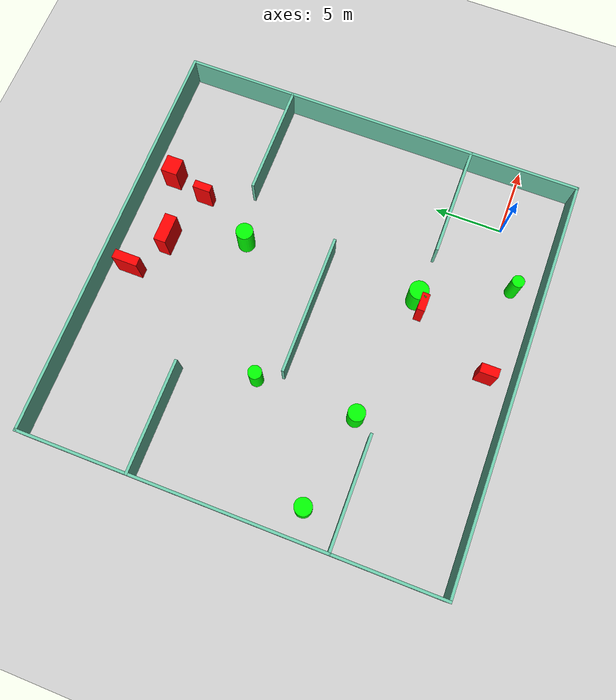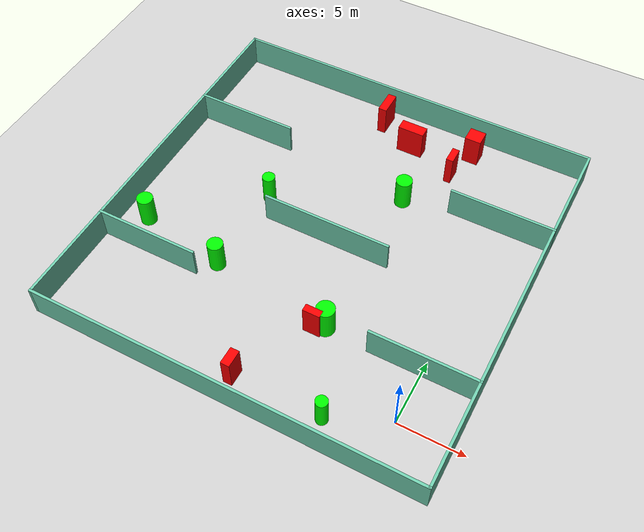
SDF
<sdf version="1.7">
 <world name="default">
  <light name="sun" type="directional">
   <pose>0 0 10 0 -0 0</pose>
   <diffuse>0.8 0.8 0.8 1</diffuse>
   <specular>0.2 0.2 0.2 1</specular>
   <attenuation>
    <range>1000</range>
    <constant>0.9</constant>
    <linear>0.01</linear>
    <quadratic>0.001</quadratic>
   </attenuation>
   <direction>-0.5 0.1 -0.9</direction>
   <spot><inner_angle>0</inner_angle><outer_angle>0</outer_angle><falloff>0</falloff></spot>
  </light>
  <model name="ground_plane">
   <static>1</static>
   <link name="link">
    <collision name="collision">
     <geometry><plane><normal>0 0 1</normal><size>100 100</size></plane></geometry>
     <surface>
      <contact><collide_bitmask>65535</collide_bitmask></contact>
      <friction><ode><mu>100</mu><mu2>50</mu2></ode></friction>
     </surface>
    </collision>
    <visual name="visual">
     <cast_shadows>0</cast_shadows>
     <geometry><plane><normal>0 0 1</normal><size>100 100</size></plane></geometry>
     <material>
      <script><uri>file://media/materials/scripts/gazebo.material</uri><name>Gazebo/Grey</name></script>
     </material>
    </visual>
   </link>
  </model>
  <gravity>0 0 -9.8</gravity>
  <magnetic_field>6e-06 2.3e-05 -4.2e-05</magnetic_field>
  <atmosphere type="adiabatic"/>
  <physics type="ode">
   <max_step_size>0.001</max_step_size>
   <real_time_factor>1</real_time_factor>
   <real_time_update_rate>1000</real_time_update_rate>
  </physics>
  <scene><ambient>0.4 0.4 0.4 1</ambient><background>0.7 0.7 0.7 1</background><shadows>1</shadows></scene>
  <spherical_coordinates>
   <surface_model>EARTH_WGS84</surface_model>
   <latitude_deg>0</latitude_deg>
   <longitude_deg>0</longitude_deg>
   <elevation>0</elevation>
   <heading_deg>0</heading_deg>
  </spherical_coordinates>
  <model name="my_base_walls">
   <link name="Wall_10">
    <collision name="Wall_10_Collision">
     <geometry><box><size>8.2 0.2 2.5</size></box></geometry>
     <pose>0 0 1.25 0 -0 0</pose>
    </collision>
    <visual name="Wall_10_Visual">
     <pose>0 0 1.25 0 -0 0</pose>
     <geometry><box><size>8.2 0.2 2.5</size></box></geometry>
     <material>
      <script><uri>file://media/materials/scripts/gazebo.material</uri><name>Gazebo/Grey</name></script>
      <ambient>0.435294 0.796078 0.67451 1</ambient>
     </material>
     <meta><layer>0</layer></meta>
    </visual>
    <pose>-11 -7 0 0 -0 0</pose>
   </link>
   <link name="Wall_12">
    <collision name="Wall_12_Collision">
     <geometry><box><size>8.2 0.2 2.5</size></box></geometry>
     <pose>0 0 1.25 0 -0 0</pose>
    </collision>
    <visual name="Wall_12_Visual">
     <pose>0 0 1.25 0 -0 0</pose>
     <geometry><box><size>8.2 0.2 2.5</size></box></geometry>
     <material>
      <script><uri>file://media/materials/scripts/gazebo.material</uri><name>Gazebo/Grey</name></script>
      <ambient>0.435294 0.796078 0.67451 1</ambient>
     </material>
     <meta><layer>0</layer></meta>
    </visual>
    <pose>-11 7 0 0 -0 0</pose>
   </link>
   <link name="Wall_14">
    <collision name="Wall_14_Collision">
     <geometry><box><size>8.2 0.2 2.5</size></box></geometry>
     <pose>0 0 1.25 0 -0 0</pose>
    </collision>
    <visual name="Wall_14_Visual">
     <pose>0 0 1.25 0 -0 0</pose>
     <geometry><box><size>8.2 0.2 2.5</size></box></geometry>
     <material>
      <script><uri>file://media/materials/scripts/gazebo.material</uri><name>Gazebo/Grey</name></script>
      <ambient>0.435294 0.796078 0.67451 1</ambient>
     </material>
     <meta><layer>0</layer></meta>
    </visual>
    <pose>11 7 0 0 -0 3.14159</pose>
   </link>
   <link name="Wall_16">
    <collision name="Wall_16_Collision">
     <geometry><box><size>10.2 0.2 2.5</size></box></geometry>
     <pose>0 0 1.25 0 -0 0</pose>
    </collision>
    <visual name="Wall_16_Visual">
     <pose>0 0 1.25 0 -0 0</pose>
     <geometry><box><size>10.2 0.2 2.5</size></box></geometry>
     <material>
      <script><uri>file://media/materials/scripts/gazebo.material</uri><name>Gazebo/Grey</name></script>
      <ambient>0.435294 0.796078 0.67451 1</ambient>
     </material>
     <meta><layer>0</layer></meta>
    </visual>
    <pose>0 0 0 0 -0 3.14159</pose>
   </link>
   <link name="Wall_2">
    <collision name="Wall_2_Collision">
     <geometry><box><size>30.2 0.2 2.5</size></box></geometry>
     <pose>0 0 1.25 0 -0 0</pose>
    </collision>
    <visual name="Wall_2_Visual">
     <pose>0 0 1.25 0 -0 0</pose>
     <geometry><box><size>30.2 0.2 2.5</size></box></geometry>
     <material>
      <script><uri>file://media/materials/scripts/gazebo.material</uri><name>Gazebo/Grey</name></script>
      <ambient>0.435294 0.796078 0.67451 1</ambient>
     </material>
     <meta><layer>0</layer></meta>
    </visual>
    <pose>0 -15 0 0 -0 3.14159</pose>
   </link>
   <link name="Wall_3">
    <collision name="Wall_3_Collision">
     <geometry><box><size>30.2 0.2 2.5</size></box></geometry>
     <pose>0 0 1.25 0 -0 0</pose>
    </collision>
    <visual name="Wall_3_Visual">
     <pose>0 0 1.25 0 -0 0</pose>
     <geometry><box><size>30.2 0.2 2.5</size></box></geometry>
     <material>
      <script><uri>file://media/materials/scripts/gazebo.material</uri><name>Gazebo/Grey</name></script>
      <ambient>0.435294 0.796078 0.67451 1</ambient>
     </material>
     <meta><layer>0</layer></meta>
    </visual>
    <pose>-15 0 0 0 -0 1.5708</pose>
   </link>
   <link name="Wall_4">
    <collision name="Wall_4_Collision">
     <geometry><box><size>30.2 0.2 2.5</size></box></geometry>
     <pose>0 0 1.25 0 -0 0</pose>
    </collision>
    <visual name="Wall_4_Visual">
     <pose>0 0 1.25 0 -0 0</pose>
     <geometry><box><size>30.2 0.2 2.5</size></box></geometry>
     <material>
      <script><uri>file://media/materials/scripts/gazebo.material</uri><name>Gazebo/Grey</name></script>
      <ambient>0.435294 0.796078 0.67451 1</ambient>
     </material>
     <meta><layer>0</layer></meta>
    </visual>
    <pose>0 15 0 0 -0 0</pose>
   </link>
   <link name="Wall_6">
    <collision name="Wall_6_Collision">
     <geometry><box><size>30.2 0.2 2.5</size></box></geometry>
     <pose>0 0 1.25 0 -0 0</pose>
    </collision>
    <visual name="Wall_6_Visual">
     <pose>0 0 1.25 0 -0 0</pose>
     <geometry><box><size>30.2 0.2 2.5</size></box></geometry>
     <material>
      <script><uri>file://media/materials/scripts/gazebo.material</uri><name>Gazebo/Grey</name></script>
      <ambient>0.435294 0.796078 0.67451 1</ambient>
     </material>
     <meta><layer>0</layer></meta>
    </visual>
    <pose>15 0 0 0 -0 1.5708</pose>
   </link>
   <link name="Wall_8">
    <collision name="Wall_8_Collision">
     <geometry><box><size>8.2 0.2 2.5</size></box></geometry>
     <pose>0 0 1.25 0 -0 0</pose>
    </collision>
    <visual name="Wall_8_Visual">
     <pose>0 0 1.25 0 -0 0</pose>
     <geometry><box><size>8.2 0.2 2.5</size></box></geometry>
     <material>
      <script><uri>file://media/materials/scripts/gazebo.material</uri><name>Gazebo/Grey</name></script>
      <ambient>0.435294 0.796078 0.67451 1</ambient>
     </material>
     <meta><layer>0</layer></meta>
    </visual>
    <pose>11 -7 0 0 -0 3.14159</pose>
   </link>
   <static>1</static>
   <pose>-11 11 0 0 -0 0</pose>
  </model>
  <model name="cylinder1">
   <static>1</static>
   <link name="link">
    <inertial>
     <mass>1</mass>
     <inertia><ixx>0.5</ixx><ixy>0</ixy><ixz>0</ixz><iyy>0.5</iyy><iyz>0</iyz><izz>1</izz></inertia>
    </inertial>
    <collision name="collision">
     <geometry><cylinder><radius>0.6994123490829154</radius><length>2.5</length></cylinder></geometry>
    </collision>
    <visual name="visual">
     <geometry><cylinder><radius>0.6994123490829154</radius><length>2.5</length></cylinder></geometry>
     <material>
      <ambient>0 1 0 1</ambient>
      <diffuse>0 1 0 1</diffuse>
      <specular>0.1 0.1 0.1 1</specular>
      <emissive>0 0 0 0</emissive>
     </material>
    </visual>
   </link>
   <pose>-7.393906081482108 4.21552552493583 1.25 0 0 0</pose>
  </model>
  <model name="cylinder2">
   <static>1</static>
   <link name="link">
    <inertial>
     <mass>1</mass>
     <inertia><ixx>0.5</ixx><ixy>0</ixy><ixz>0</ixz><iyy>0.5</iyy><iyz>0</iyz><izz>1</izz></inertia>
    </inertial>
    <collision name="collision">
     <geometry><cylinder><radius>0.6193434017319007</radius><length>2.5</length></cylinder></geometry>
    </collision>
    <visual name="visual">
     <geometry><cylinder><radius>0.6193434017319007</radius><length>2.5</length></cylinder></geometry>
     <material>
      <ambient>0 1 0 1</ambient>
      <diffuse>0 1 0 1</diffuse>
      <specular>0.1 0.1 0.1 1</specular>
      <emissive>0 0 0 0</emissive>
     </material>
    </visual>
   </link>
   <pose>-23.88640970963022 6.545078211131925 1.25 0 0 0</pose>
  </model>
  <model name="cylinder3">
   <static>1</static>
   <link name="link">
    <inertial>
     <mass>1</mass>
     <inertia><ixx>0.5</ixx><ixy>0</ixy><ixz>0</ixz><iyy>0.5</iyy><iyz>0</iyz><izz>1</izz></inertia>
    </inertial>
    <collision name="collision">
     <geometry><cylinder><radius>0.6303098569537968</radius><length>2.5</length></cylinder></geometry>
    </collision>
    <visual name="visual">
     <geometry><cylinder><radius>0.6303098569537968</radius><length>2.5</length></cylinder></geometry>
     <material>
      <ambient>0 1 0 1</ambient>
      <diffuse>0 1 0 1</diffuse>
      <specular>0.1 0.1 0.1 1</specular>
      <emissive>0 0 0 0</emissive>
     </material>
    </visual>
   </link>
   <pose>-7.600291704449635 17.221768933959602 1.25 0 0 0</pose>
  </model>
  <model name="cylinder4">
   <static>1</static>
   <link name="link">
    <inertial>
     <mass>1</mass>
     <inertia><ixx>0.5</ixx><ixy>0</ixy><ixz>0</ixz><iyy>0.5</iyy><iyz>0</iyz><izz>1</izz></inertia>
    </inertial>
    <collision name="collision">
     <geometry><cylinder><radius>0.6090497674550008</radius><length>2.5</length></cylinder></geometry>
    </collision>
    <visual name="visual">
     <geometry><cylinder><radius>0.6090497674550008</radius><length>2.5</length></cylinder></geometry>
     <material>
      <ambient>0 1 0 1</ambient>
      <diffuse>0 1 0 1</diffuse>
      <specular>0.1 0.1 0.1 1</specular>
      <emissive>0 0 0 0</emissive>
     </material>
    </visual>
   </link>
   <pose>-16.983422320086046 5.380549129273996 1.25 0 0 0</pose>
  </model>
  <model name="cylinder5">
   <static>1</static>
   <link name="link">
    <inertial>
     <mass>1</mass>
     <inertia><ixx>0.5</ixx><ixy>0</ixy><ixz>0</ixz><iyy>0.5</iyy><iyz>0</iyz><izz>1</izz></inertia>
    </inertial>
    <collision name="collision">
     <geometry><cylinder><radius>0.4935026883474836</radius><length>2.5</length></cylinder></geometry>
    </collision>
    <visual name="visual">
     <geometry><cylinder><radius>0.4935026883474836</radius><length>2.5</length></cylinder></geometry>
     <material>
      <ambient>0 1 0 1</ambient>
      <diffuse>0 1 0 1</diffuse>
      <specular>0.1 0.1 0.1 1</specular>
      <emissive>0 0 0 0</emissive>
     </material>
    </visual>
   </link>
   <pose>-16.83445587351151 12.715944857397465 1.25 0 0 0</pose>
  </model>
  <model name="cylinder6">
   <static>1</static>
   <link name="link">
    <inertial>
     <mass>1</mass>
     <inertia><ixx>0.5</ixx><ixy>0</ixy><ixz>0</ixz><iyy>0.5</iyy><iyz>0</iyz><izz>1</izz></inertia>
    </inertial>
    <collision name="collision">
     <geometry><cylinder><radius>0.44920235300155575</radius><length>2.5</length></cylinder></geometry>
    </collision>
    <visual name="visual">
     <geometry><cylinder><radius>0.44920235300155575</radius><length>2.5</length></cylinder></geometry>
     <material>
      <ambient>0 1 0 1</ambient>
      <diffuse>0 1 0 1</diffuse>
      <specular>0.1 0.1 0.1 1</specular>
      <emissive>0 0 0 0</emissive>
     </material>
    </visual>
   </link>
   <pose>-4.337684247714494 -2.025211164621896 1.25 0 0 0</pose>
  </model>
  <model name="box1">
   <static>1</static>
   <link name="link">
    <inertial>
     <mass>1</mass>
     <inertia><ixx>0.083</ixx><ixy>0</ixy><ixz>0</ixz><iyy>0.083</iyy><iyz>0</iyz><izz>0.083</izz></inertia>
    </inertial>
    <collision name="collision">
     <geometry><box><size>1.2801067600350216 1.2237076609212671 2.5</size></box></geometry>
    </collision>
    <visual name="visual">
     <geometry><box><size>1.2801067600350216 1.2237076609212671 2.5</size></box></geometry>
     <material>
      <ambient>1 0 0 1</ambient>
      <diffuse>1 0 0 1</diffuse>
      <specular>0.1 0.1 0.1 1</specular>
      <emissive>0 0 0 0</emissive>
     </material>
    </visual>
    <sensor name="my_contact" type="contact">
     <contact><collision>box_collision</collision><topic>__default_topic__</topic></contact>
    </sensor>
   </link>
   <pose>-4.639158400779877 24.12243129314556 1.25 0 0 0</pose>
  </model>
  <model name="box2">
   <static>1</static>
   <link name="link">
    <inertial>
     <mass>1</mass>
     <inertia><ixx>0.083</ixx><ixy>0</ixy><ixz>0</ixz><iyy>0.083</iyy><iyz>0</iyz><izz>0.083</izz></inertia>
    </inertial>
    <collision name="collision">
     <geometry><box><size>0.6788284269008151 1.3169773502710578 2.5</size></box></geometry>
    </collision>
    <visual name="visual">
     <geometry><box><size>0.6788284269008151 1.3169773502710578 2.5</size></box></geometry>
     <material>
      <ambient>1 0 0 1</ambient>
      <diffuse>1 0 0 1</diffuse>
      <specular>0.1 0.1 0.1 1</specular>
      <emissive>0 0 0 0</emissive>
     </material>
    </visual>
    <sensor name="my_contact" type="contact">
     <contact><collision>box_collision</collision><topic>__default_topic__</topic></contact>
    </sensor>
   </link>
   <pose>-11.115949403271632 -2.0316157300833875 1.25 0 0 0</pose>
  </model>
  <model name="box3">
   <static>1</static>
   <link name="link">
    <inertial>
     <mass>1</mass>
     <inertia><ixx>0.083</ixx><ixy>0</ixy><ixz>0</ixz><iyy>0.083</iyy><iyz>0</iyz><izz>0.083</izz></inertia>
    </inertial>
    <collision name="collision">
     <geometry><box><size>2.0973481601530892 0.8932361011459401 2.5</size></box></geometry>
    </collision>
    <visual name="visual">
     <geometry><box><size>2.0973481601530892 0.8932361011459401 2.5</size></box></geometry>
     <material>
      <ambient>1 0 0 1</ambient>
      <diffuse>1 0 0 1</diffuse>
      <specular>0.1 0.1 0.1 1</specular>
      <emissive>0 0 0 0</emissive>
     </material>
    </visual>
    <sensor name="my_contact" type="contact">
     <contact><collision>box_collision</collision><topic>__default_topic__</topic></contact>
    </sensor>
   </link>
   <pose>-9.35633823841962 22.58634596599143 1.25 0 0 0</pose>
  </model>
  <model name="box4">
   <static>1</static>
   <link name="link">
    <inertial>
     <mass>1</mass>
     <inertia><ixx>0.083</ixx><ixy>0</ixy><ixz>0</ixz><iyy>0.083</iyy><iyz>0</iyz><izz>0.083</izz></inertia>
    </inertial>
    <collision name="collision">
     <geometry><box><size>0.677639402671639 1.8831587656023527 2.5</size></box></geometry>
    </collision>
    <visual name="visual">
     <geometry><box><size>0.677639402671639 1.8831587656023527 2.5</size></box></geometry>
     <material>
      <ambient>1 0 0 1</ambient>
      <diffuse>1 0 0 1</diffuse>
      <specular>0.1 0.1 0.1 1</specular>
      <emissive>0 0 0 0</emissive>
     </material>
    </visual>
    <sensor name="my_contact" type="contact">
     <contact><collision>box_collision</collision><topic>__default_topic__</topic></contact>
    </sensor>
   </link>
   <pose>-12.401632688785199 24.259273982151985 1.25 0 0 0</pose>
  </model>
  <model name="box5">
   <static>1</static>
   <link name="link">
    <inertial>
     <mass>1</mass>
     <inertia><ixx>0.083</ixx><ixy>0</ixy><ixz>0</ixz><iyy>0.083</iyy><iyz>0</iyz><izz>0.083</izz></inertia>
    </inertial>
    <collision name="collision">
     <geometry><box><size>0.5628679448153354 1.3102272071639565 2.5</size></box></geometry>
    </collision>
    <visual name="visual">
     <geometry><box><size>0.5628679448153354 1.3102272071639565 2.5</size></box></geometry>
     <material>
      <ambient>1 0 0 1</ambient>
      <diffuse>1 0 0 1</diffuse>
      <specular>0.1 0.1 0.1 1</specular>
      <emissive>0 0 0 0</emissive>
     </material>
    </visual>
    <sensor name="my_contact" type="contact">
     <contact><collision>box_collision</collision><topic>__default_topic__</topic></contact>
    </sensor>
   </link>
   <pose>-5.4129729297641145 21.38834486405529 1.25 0 0 0</pose>
  </model>
  <model name="box6">
   <static>1</static>
   <link name="link">
    <inertial>
     <mass>1</mass>
     <inertia><ixx>0.083</ixx><ixy>0</ixy><ixz>0</ixz><iyy>0.083</iyy><iyz>0</iyz><izz>0.083</izz></inertia>
    </inertial>
    <collision name="collision">
     <geometry><box><size>1.313580691311551 0.5591706832818062 2.5</size></box></geometry>
    </collision>
    <visual name="visual">
     <geometry><box><size>1.313580691311551 0.5591706832818062 2.5</size></box></geometry>
     <material>
      <ambient>1 0 0 1</ambient>
      <diffuse>1 0 0 1</diffuse>
      <specular>0.1 0.1 0.1 1</specular>
      <emissive>0 0 0 0</emissive>
     </material>
    </visual>
    <sensor name="my_contact" type="contact">
     <contact><collision>box_collision</collision><topic>__default_topic__</topic></contact>
    </sensor>
   </link>
   <pose>-8.084961146108219 3.6609149141998687 1.25 0 0 0</pose>
  </model>
 </world>
</sdf>
